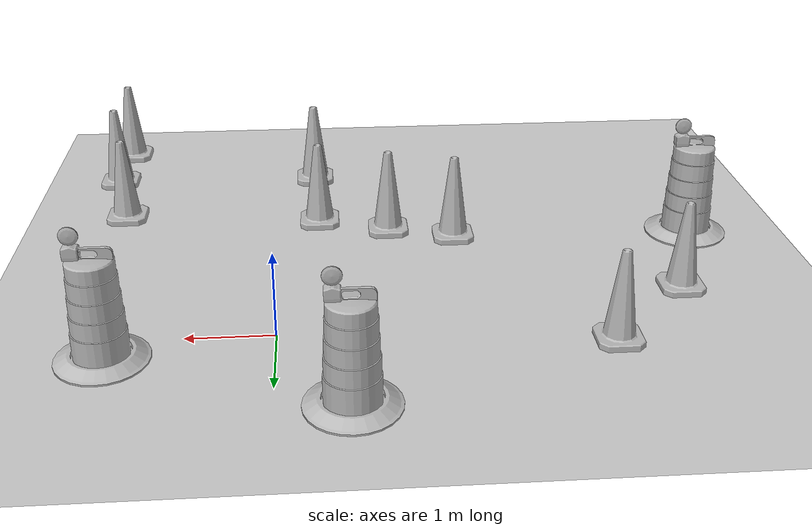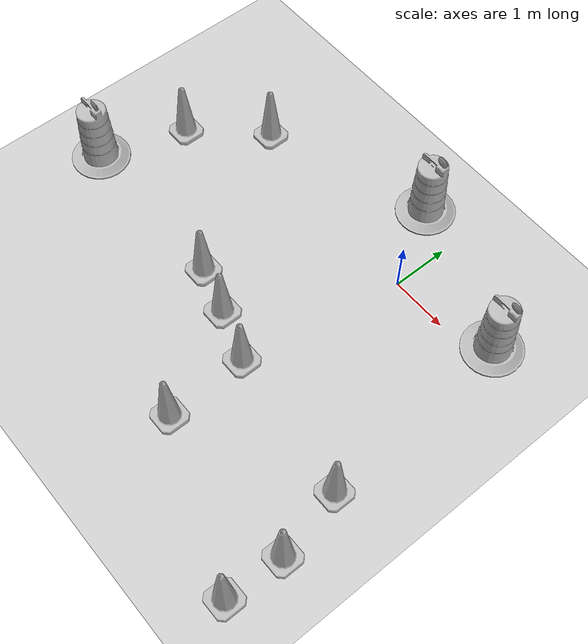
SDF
<sdf version="1.7">
 <world name="default">
  <light name="sun" type="directional">
   <pose>0 0 10 0 -0 0</pose>
   <diffuse>0.8 0.8 0.8 1</diffuse>
   <specular>0.2 0.2 0.2 1</specular>
   <attenuation>
    <range>1000</range>
    <constant>0.9</constant>
    <linear>0.01</linear>
    <quadratic>0.001</quadratic>
   </attenuation>
   <direction>-0.5 0.1 -0.9</direction>
   <spot><inner_angle>0</inner_angle><outer_angle>0</outer_angle><falloff>0</falloff></spot>
  </light>
  <model name="ground_plane">
   <static>1</static>
   <link name="link">
    <collision name="collision">
     <geometry><plane><normal>0 0 1</normal><size>100 100</size></plane></geometry>
     <surface>
      <contact><collide_bitmask>65535</collide_bitmask></contact>
      <friction><ode><mu>100</mu><mu2>50</mu2></ode></friction>
     </surface>
    </collision>
    <visual name="visual">
     <cast_shadows>0</cast_shadows>
     <geometry><plane><normal>0 0 1</normal><size>100 100</size></plane></geometry>
     <material>
      <script><uri>file://media/materials/scripts/gazebo.material</uri><name>Gazebo/Grey</name></script>
     </material>
    </visual>
   </link>
  </model>
  <gravity>0 0 -9.8</gravity>
  <magnetic_field>6e-06 2.3e-05 -4.2e-05</magnetic_field>
  <atmosphere type="adiabatic"/>
  <physics type="ode">
   <max_step_size>0.001</max_step_size>
   <real_time_factor>1</real_time_factor>
   <real_time_update_rate>1000</real_time_update_rate>
  </physics>
  <scene><ambient>0.4 0.4 0.4 1</ambient><background>0.7 0.7 0.7 1</background><shadows>1</shadows></scene>
  <audio><device>default</device></audio>
  <spherical_coordinates>
   <surface_model>EARTH_WGS84</surface_model>
   <latitude_deg>0</latitude_deg>
   <longitude_deg>0</longitude_deg>
   <elevation>0</elevation>
   <heading_deg>0</heading_deg>
  </spherical_coordinates>
  <model name="Construction Barrel">
   <link name="link">
    <inertial>
     <pose>0 0 0.4 0 -0 0</pose>
     <mass>500</mass>
     <inertia><ixx>51.2096</ixx><iyy>51.2096</iyy><izz>25</izz><ixy>0</ixy><ixz>0</ixz><iyz>0</iyz></inertia>
    </inertial>
    <collision name="collision">
     <geometry><mesh><uri>model://construction_barrel/meshes/construction_barrel.dae</uri></mesh></geometry>
    </collision>
    <visual name="visual">
     <geometry><mesh><uri>model://construction_barrel/meshes/construction_barrel.dae</uri></mesh></geometry>
    </visual>
   </link>
   <pose>1.8066 0.339225 -1e-06 5e-06 -3e-06 -2.6e-05</pose>
  </model>
  <model name="Construction Barrel_0">
   <link name="link">
    <inertial>
     <pose>0 0 0.4 0 -0 0</pose>
     <mass>500</mass>
     <inertia><ixx>51.2096</ixx><iyy>51.2096</iyy><izz>25</izz><ixy>0</ixy><ixz>0</ixz><iyz>0</iyz></inertia>
    </inertial>
    <collision name="collision">
     <geometry><mesh><uri>model://construction_barrel/meshes/construction_barrel.dae</uri></mesh></geometry>
    </collision>
    <visual name="visual">
     <geometry><mesh><uri>model://construction_barrel/meshes/construction_barrel.dae</uri></mesh></geometry>
    </visual>
   </link>
   <pose>-0.784695 1.34181 -2e-06 1e-06 8e-06 -2.6e-05</pose>
  </model>
  <model name="Construction Cone">
   <link name="link">
    <collision name="collision">
     <geometry>
      <mesh><scale>10 10 10</scale><uri>model://construction_cone/meshes/construction_cone.dae</uri></mesh>
     </geometry>
    </collision>
    <visual name="visual">
     <geometry>
      <mesh><scale>10 10 10</scale><uri>model://construction_cone/meshes/construction_cone.dae</uri></mesh>
     </geometry>
    </visual>
    <inertial>
     <inertia><ixx>1</ixx><ixy>0</ixy><ixz>0</ixz><iyy>1</iyy><iyz>0</iyz><izz>1</izz></inertia>
     <mass>1</mass>
    </inertial>
   </link>
   <pose>-2.18699 -2.26451 -0 0 -0 0</pose>
  </model>
  <model name="Construction Cone_0">
   <link name="link">
    <collision name="collision">
     <geometry>
      <mesh><scale>10 10 10</scale><uri>model://construction_cone/meshes/construction_cone.dae</uri></mesh>
     </geometry>
    </collision>
    <visual name="visual">
     <geometry>
      <mesh><scale>10 10 10</scale><uri>model://construction_cone/meshes/construction_cone.dae</uri></mesh>
     </geometry>
    </visual>
    <inertial>
     <inertia><ixx>1</ixx><ixy>0</ixy><ixz>0</ixz><iyy>1</iyy><iyz>0</iyz><izz>1</izz></inertia>
     <mass>1</mass>
    </inertial>
   </link>
   <pose>-1.37133 -2.50748 -0 0 -0 0</pose>
  </model>
  <model name="Construction Cone_1">
   <link name="link">
    <collision name="collision">
     <geometry>
      <mesh><scale>10 10 10</scale><uri>model://construction_cone/meshes/construction_cone.dae</uri></mesh>
     </geometry>
    </collision>
    <visual name="visual">
     <geometry>
      <mesh><scale>10 10 10</scale><uri>model://construction_cone/meshes/construction_cone.dae</uri></mesh>
     </geometry>
    </visual>
    <inertial>
     <inertia><ixx>1</ixx><ixy>0</ixy><ixz>0</ixz><iyy>1</iyy><iyz>0</iyz><izz>1</izz></inertia>
     <mass>1</mass>
    </inertial>
   </link>
   <pose>-0.489164 -2.80991 -0 0 -0 0</pose>
  </model>
  <model name="Construction Cone_2">
   <link name="link">
    <collision name="collision">
     <geometry>
      <mesh><scale>10 10 10</scale><uri>model://construction_cone/meshes/construction_cone.dae</uri></mesh>
     </geometry>
    </collision>
    <visual name="visual">
     <geometry>
      <mesh><scale>10 10 10</scale><uri>model://construction_cone/meshes/construction_cone.dae</uri></mesh>
     </geometry>
    </visual>
    <inertial>
     <inertia><ixx>1</ixx><ixy>0</ixy><ixz>0</ixz><iyy>1</iyy><iyz>0</iyz><izz>1</izz></inertia>
     <mass>1</mass>
    </inertial>
   </link>
   <pose>2.05208 -3.11038 -0 0 -1e-06 0</pose>
  </model>
  <model name="Construction Cone_3">
   <link name="link">
    <collision name="collision">
     <geometry>
      <mesh><scale>10 10 10</scale><uri>model://construction_cone/meshes/construction_cone.dae</uri></mesh>
     </geometry>
    </collision>
    <visual name="visual">
     <geometry>
      <mesh><scale>10 10 10</scale><uri>model://construction_cone/meshes/construction_cone.dae</uri></mesh>
     </geometry>
    </visual>
    <inertial>
     <inertia><ixx>1</ixx><ixy>0</ixy><ixz>0</ixz><iyy>1</iyy><iyz>0</iyz><izz>1</izz></inertia>
     <mass>1</mass>
    </inertial>
   </link>
   <pose>-3.68619 0.348599 -0 0 -0 0</pose>
  </model>
  <model name="Construction Cone_4">
   <link name="link">
    <collision name="collision">
     <geometry>
      <mesh><scale>10 10 10</scale><uri>model://construction_cone/meshes/construction_cone.dae</uri></mesh>
     </geometry>
    </collision>
    <visual name="visual">
     <geometry>
      <mesh><scale>10 10 10</scale><uri>model://construction_cone/meshes/construction_cone.dae</uri></mesh>
     </geometry>
    </visual>
    <inertial>
     <inertia><ixx>1</ixx><ixy>0</ixy><ixz>0</ixz><iyy>1</iyy><iyz>0</iyz><izz>1</izz></inertia>
     <mass>1</mass>
    </inertial>
   </link>
   <pose>-0.435126 -4.22938 0 -0 -0 -0</pose>
  </model>
  <model name="Construction Cone_5">
   <link name="link">
    <collision name="collision">
     <geometry>
      <mesh><scale>10 10 10</scale><uri>model://construction_cone/meshes/construction_cone.dae</uri></mesh>
     </geometry>
    </collision>
    <visual name="visual">
     <geometry>
      <mesh><scale>10 10 10</scale><uri>model://construction_cone/meshes/construction_cone.dae</uri></mesh>
     </geometry>
    </visual>
    <inertial>
     <inertia><ixx>1</ixx><ixy>0</ixy><ixz>0</ixz><iyy>1</iyy><iyz>0</iyz><izz>1</izz></inertia>
     <mass>1</mass>
    </inertial>
   </link>
   <pose>2.32164 -4.28798 -0 0 -1e-06 0</pose>
  </model>
  <model name="Construction Cone_6">
   <link name="link">
    <collision name="collision">
     <geometry>
      <mesh><scale>10 10 10</scale><uri>model://construction_cone/meshes/construction_cone.dae</uri></mesh>
     </geometry>
    </collision>
    <visual name="visual">
     <geometry>
      <mesh><scale>10 10 10</scale><uri>model://construction_cone/meshes/construction_cone.dae</uri></mesh>
     </geometry>
    </visual>
    <inertial>
     <inertia><ixx>1</ixx><ixy>0</ixy><ixz>0</ixz><iyy>1</iyy><iyz>0</iyz><izz>1</izz></inertia>
     <mass>1</mass>
    </inertial>
   </link>
   <pose>2.27583 -5.28244 -0 0 -0 0</pose>
  </model>
  <model name="Construction Cone_7">
   <link name="link">
    <collision name="collision">
     <geometry>
      <mesh><scale>10 10 10</scale><uri>model://construction_cone/meshes/construction_cone.dae</uri></mesh>
     </geometry>
    </collision>
    <visual name="visual">
     <geometry>
      <mesh><scale>10 10 10</scale><uri>model://construction_cone/meshes/construction_cone.dae</uri></mesh>
     </geometry>
    </visual>
    <inertial>
     <inertia><ixx>1</ixx><ixy>0</ixy><ixz>0</ixz><iyy>1</iyy><iyz>0</iyz><izz>1</izz></inertia>
     <mass>1</mass>
    </inertial>
   </link>
   <pose>-4.70538 -0.742411 0 -0 -0 -0</pose>
  </model>
  <model name="Construction Barrel_1">
   <link name="link">
    <inertial>
     <pose>0 0 0.4 0 -0 0</pose>
     <mass>500</mass>
     <inertia><ixx>51.2096</ixx><iyy>51.2096</iyy><izz>25</izz><ixy>0</ixy><ixz>0</ixz><iyz>0</iyz></inertia>
    </inertial>
    <collision name="collision">
     <geometry><mesh><uri>model://construction_barrel/meshes/construction_barrel.dae</uri></mesh></geometry>
    </collision>
    <visual name="visual">
     <geometry><mesh><uri>model://construction_barrel/meshes/construction_barrel.dae</uri></mesh></geometry>
    </visual>
   </link>
   <pose>-5.20606 -2.20809 -1e-06 3e-06 -2e-06 -4e-06</pose>
  </model>
 </world>
</sdf>
